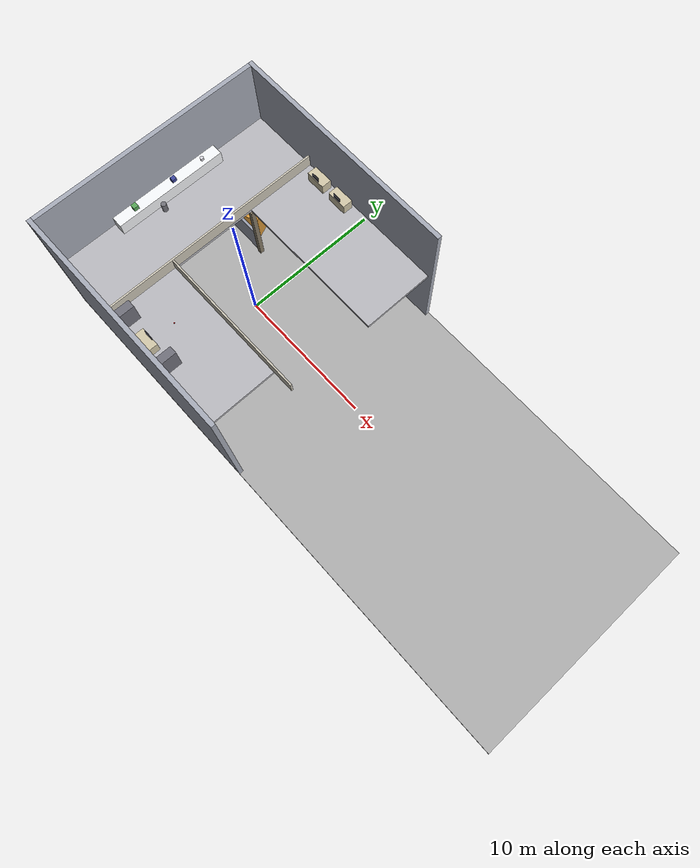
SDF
<sdf version="1.9">
 <world name="single_agent_search_room_easy">
  <model name="ground">
   <static>true</static>
   <link name="link">
    <collision name="collision"><geometry><box><size>38.6 16.6 0.2</size></box></geometry></collision>
    <visual name="visual">
     <geometry><box><size>38.6 16.6 0.2</size></box></geometry>
     <material><ambient>0.58 0.58 0.58 1</ambient><diffuse>0.68 0.68 0.68 1</diffuse></material>
    </visual>
   </link>
   <pose>11 0 -0.1 0 0 0</pose>
  </model>
  <model name="wall_A_south">
   <static>true</static>
   <link name="link">
    <collision name="collision"><geometry><box><size>16.6 0.3 10.0</size></box></geometry></collision>
    <visual name="visual">
     <geometry><box><size>16.6 0.3 10.0</size></box></geometry>
     <material><ambient>0.55 0.57 0.62 1</ambient><diffuse>0.65 0.67 0.72 1</diffuse></material>
    </visual>
   </link>
   <pose>0 -8.15 5.0 0 0 0</pose>
  </model>
  <model name="wall_A_north">
   <static>true</static>
   <link name="link">
    <collision name="collision"><geometry><box><size>16.6 0.3 10.0</size></box></geometry></collision>
    <visual name="visual">
     <geometry><box><size>16.6 0.3 10.0</size></box></geometry>
     <material><ambient>0.55 0.57 0.62 1</ambient><diffuse>0.65 0.67 0.72 1</diffuse></material>
    </visual>
   </link>
   <pose>0 8.15 5.0 0 0 0</pose>
  </model>
  <model name="wall_A_west">
   <static>true</static>
   <link name="link">
    <collision name="collision"><geometry><box><size>0.3 16.6 10.0</size></box></geometry></collision>
    <visual name="visual">
     <geometry><box><size>0.3 16.6 10.0</size></box></geometry>
     <material><ambient>0.55 0.57 0.62 1</ambient><diffuse>0.65 0.67 0.72 1</diffuse></material>
    </visual>
   </link>
   <pose>-8.15 0 5.0 0 0 0</pose>
  </model>
  <model name="divider_A_ground_south">
   <static>true</static>
   <link name="link">
    <collision name="collision"><geometry><box><size>4.8 0.18 2.2</size></box></geometry></collision>
    <visual name="visual">
     <geometry><box><size>4.8 0.18 2.2</size></box></geometry>
     <material><ambient>0.50 0.52 0.58 1</ambient><diffuse>0.60 0.62 0.68 1</diffuse></material>
    </visual>
   </link>
   <pose>-5.6 -3.05 1.1 0 0 0</pose>
  </model>
  <model name="divider_A_ground_north">
   <static>true</static>
   <link name="link">
    <collision name="collision"><geometry><box><size>4.8 0.18 2.2</size></box></geometry></collision>
    <visual name="visual">
     <geometry><box><size>4.8 0.18 2.2</size></box></geometry>
     <material><ambient>0.50 0.52 0.58 1</ambient><diffuse>0.60 0.62 0.68 1</diffuse></material>
    </visual>
   </link>
   <pose>-5.6 3.05 1.1 0 0 0</pose>
  </model>
  <model name="col_inner_sw">
   <static>true</static>
   <link name="link">
    <collision name="collision"><geometry><box><size>0.3 0.3 5.0</size></box></geometry></collision>
    <visual name="visual">
     <geometry><box><size>0.3 0.3 5.0</size></box></geometry>
     <material><ambient>0.42 0.38 0.32 1</ambient><diffuse>0.52 0.48 0.40 1</diffuse></material>
    </visual>
   </link>
   <pose>-3.0 -3.0 2.5 0 0 0</pose>
  </model>
  <model name="col_inner_nw">
   <static>true</static>
   <link name="link">
    <collision name="collision"><geometry><box><size>0.3 0.3 5.0</size></box></geometry></collision>
    <visual name="visual">
     <geometry><box><size>0.3 0.3 5.0</size></box></geometry>
     <material><ambient>0.42 0.38 0.32 1</ambient><diffuse>0.52 0.48 0.40 1</diffuse></material>
    </visual>
   </link>
   <pose>-3.0 3.0 2.5 0 0 0</pose>
  </model>
  <model name="crate_A1">
   <static>true</static>
   <link name="link">
    <collision name="collision"><geometry><box><size>1.8 1.4 2.0</size></box></geometry></collision>
    <visual name="visual">
     <geometry><box><size>1.8 1.4 2.0</size></box></geometry>
     <material><ambient>0.80 0.55 0.18 1</ambient><diffuse>0.88 0.62 0.24 1</diffuse></material>
    </visual>
   </link>
   <pose>-5.0 4.0 1.0 0 0 0.4</pose>
  </model>
  <model name="crate_A2">
   <static>true</static>
   <link name="link">
    <collision name="collision"><geometry><box><size>2.2 0.8 1.4</size></box></geometry></collision>
    <visual name="visual">
     <geometry><box><size>2.2 0.8 1.4</size></box></geometry>
     <material><ambient>0.22 0.52 0.78 1</ambient><diffuse>0.28 0.60 0.86 1</diffuse></material>
    </visual>
   </link>
   <pose>-5.0 -5.0 0.7 0 0 0</pose>
  </model>
  <model name="mezz_slab_west">
   <static>true</static>
   <link name="link">
    <collision name="collision"><geometry><box><size>5.0 16.0 0.2</size></box></geometry></collision>
    <visual name="visual">
     <geometry><box><size>5.0 16.0 0.2</size></box></geometry>
     <material><ambient>0.62 0.62 0.64 1</ambient><diffuse>0.72 0.72 0.74 1</diffuse></material>
    </visual>
   </link>
   <pose>-5.5 0 5.1 0 0 0</pose>
  </model>
  <model name="mezz_slab_south_west">
   <static>true</static>
   <link name="link">
    <collision name="collision"><geometry><box><size>9.4 5.0 0.2</size></box></geometry></collision>
    <visual name="visual">
     <geometry><box><size>9.4 5.0 0.2</size></box></geometry>
     <material><ambient>0.62 0.62 0.64 1</ambient><diffuse>0.72 0.72 0.74 1</diffuse></material>
    </visual>
   </link>
   <pose>1.7 -5.5 5.1 0 0 0</pose>
  </model>
  <model name="mezz_slab_north">
   <static>true</static>
   <link name="link">
    <collision name="collision"><geometry><box><size>11.0 5.0 0.2</size></box></geometry></collision>
    <visual name="visual">
     <geometry><box><size>11.0 5.0 0.2</size></box></geometry>
     <material><ambient>0.62 0.62 0.64 1</ambient><diffuse>0.72 0.72 0.74 1</diffuse></material>
    </visual>
   </link>
   <pose>2.5 5.5 5.1 0 0 0</pose>
  </model>
  <model name="railing_atrium_w">
   <static>true</static>
   <link name="link">
    <collision name="collision"><geometry><box><size>0.12 16.0 0.9</size></box></geometry></collision>
    <visual name="visual">
     <geometry><box><size>0.12 16.0 0.9</size></box></geometry>
     <material><ambient>0.70 0.68 0.64 1</ambient><diffuse>0.80 0.78 0.72 1</diffuse></material>
    </visual>
   </link>
   <pose>-3.06 0 5.65 0 0 0</pose>
  </model>
  <model name="railing_atrium_s">
   <static>true</static>
   <link name="link">
    <collision name="collision"><geometry><box><size>11.0 0.12 0.9</size></box></geometry></collision>
    <visual name="visual">
     <geometry><box><size>11.0 0.12 0.9</size></box></geometry>
     <material><ambient>0.70 0.68 0.64 1</ambient><diffuse>0.80 0.78 0.72 1</diffuse></material>
    </visual>
   </link>
   <pose>2.5 -3.06 5.65 0 0 0</pose>
  </model>
  <model name="bench_lab_west">
   <static>true</static>
   <link name="link">
    <collision name="collision"><geometry><box><size>0.8 8.0 0.9</size></box></geometry></collision>
    <visual name="visual">
     <geometry><box><size>0.8 8.0 0.9</size></box></geometry>
     <material><ambient>0.90 0.92 0.94 1</ambient><diffuse>0.96 0.97 0.98 1</diffuse></material>
    </visual>
   </link>
   <pose>-7.45 0 5.65 0 0 0</pose>
  </model>
  <model name="equip_west_1">
   <static>true</static>
   <link name="link">
    <collision name="collision"><geometry><box><size>0.35 0.35 0.45</size></box></geometry></collision>
    <visual name="visual">
     <geometry><box><size>0.35 0.35 0.45</size></box></geometry>
     <material><ambient>0.28 0.55 0.28 1</ambient><diffuse>0.35 0.65 0.35 1</diffuse></material>
    </visual>
   </link>
   <pose>-7.45 -2.5 6.18 0 0 0</pose>
  </model>
  <model name="equip_west_2">
   <static>true</static>
   <link name="link">
    <collision name="collision"><geometry><box><size>0.30 0.30 0.40</size></box></geometry></collision>
    <visual name="visual">
     <geometry><box><size>0.30 0.30 0.40</size></box></geometry>
     <material><ambient>0.18 0.22 0.52 1</ambient><diffuse>0.24 0.28 0.62 1</diffuse></material>
    </visual>
   </link>
   <pose>-7.45 0.5 6.15 0 0 0</pose>
  </model>
  <model name="equip_west_3">
   <static>true</static>
   <link name="link">
    <collision name="collision">
     <geometry><cylinder><radius>0.12</radius><length>0.40</length></cylinder></geometry>
    </collision>
    <visual name="visual">
     <geometry><cylinder><radius>0.12</radius><length>0.40</length></cylinder></geometry>
     <material><ambient>0.75 0.75 0.78 1</ambient><diffuse>0.85 0.85 0.88 1</diffuse></material>
    </visual>
   </link>
   <pose>-7.45 2.8 6.10 0 0 0</pose>
  </model>
  <model name="stool_west">
   <static>true</static>
   <link name="link">
    <collision name="collision">
     <geometry><cylinder><radius>0.18</radius><length>0.65</length></cylinder></geometry>
    </collision>
    <visual name="visual">
     <geometry><cylinder><radius>0.18</radius><length>0.65</length></cylinder></geometry>
     <material><ambient>0.35 0.35 0.38 1</ambient><diffuse>0.45 0.45 0.48 1</diffuse></material>
    </visual>
   </link>
   <pose>-6.7 -1.0 5.53 0 0 0</pose>
  </model>
  <model name="desk_north_1">
   <static>true</static>
   <link name="link">
    <collision name="collision"><geometry><box><size>1.4 0.7 0.75</size></box></geometry></collision>
    <visual name="visual">
     <geometry><box><size>1.4 0.7 0.75</size></box></geometry>
     <material><ambient>0.72 0.68 0.58 1</ambient><diffuse>0.82 0.78 0.66 1</diffuse></material>
    </visual>
   </link>
   <pose>-1.5 7.5 5.575 0 0 0</pose>
  </model>
  <model name="desk_north_2">
   <static>true</static>
   <link name="link">
    <collision name="collision"><geometry><box><size>1.4 0.7 0.75</size></box></geometry></collision>
    <visual name="visual">
     <geometry><box><size>1.4 0.7 0.75</size></box></geometry>
     <material><ambient>0.72 0.68 0.58 1</ambient><diffuse>0.82 0.78 0.66 1</diffuse></material>
    </visual>
   </link>
   <pose>0.5 7.5 5.575 0 0 0</pose>
  </model>
  <model name="monitor_n1">
   <static>true</static>
   <link name="link">
    <collision name="collision"><geometry><box><size>0.55 0.06 0.38</size></box></geometry></collision>
    <visual name="visual">
     <geometry><box><size>0.55 0.06 0.38</size></box></geometry>
     <material><ambient>0.10 0.10 0.12 1</ambient><diffuse>0.16 0.16 0.20 1</diffuse></material>
    </visual>
   </link>
   <pose>-1.5 7.2 6.14 0 0 0</pose>
  </model>
  <model name="monitor_n2">
   <static>true</static>
   <link name="link">
    <collision name="collision"><geometry><box><size>0.55 0.06 0.38</size></box></geometry></collision>
    <visual name="visual">
     <geometry><box><size>0.55 0.06 0.38</size></box></geometry>
     <material><ambient>0.10 0.10 0.12 1</ambient><diffuse>0.16 0.16 0.20 1</diffuse></material>
    </visual>
   </link>
   <pose>0.5 7.2 6.14 0 0 0</pose>
  </model>
  <model name="desk_south">
   <static>true</static>
   <link name="link">
    <collision name="collision"><geometry><box><size>1.4 0.7 0.75</size></box></geometry></collision>
    <visual name="visual">
     <geometry><box><size>1.4 0.7 0.75</size></box></geometry>
     <material><ambient>0.72 0.68 0.58 1</ambient><diffuse>0.82 0.78 0.66 1</diffuse></material>
    </visual>
   </link>
   <pose>0 -7.5 5.575 0 0 0</pose>
  </model>
  <model name="monitor_south">
   <static>true</static>
   <link name="link">
    <collision name="collision"><geometry><box><size>0.55 0.06 0.38</size></box></geometry></collision>
    <visual name="visual">
     <geometry><box><size>0.55 0.06 0.38</size></box></geometry>
     <material><ambient>0.10 0.10 0.12 1</ambient><diffuse>0.16 0.16 0.20 1</diffuse></material>
    </visual>
   </link>
   <pose>0 -7.2 6.14 0 0 0</pose>
  </model>
  <model name="cabinet_south_w">
   <static>true</static>
   <link name="link">
    <collision name="collision"><geometry><box><size>0.55 1.5 1.6</size></box></geometry></collision>
    <visual name="visual">
     <geometry><box><size>0.55 1.5 1.6</size></box></geometry>
     <material><ambient>0.35 0.35 0.38 1</ambient><diffuse>0.44 0.44 0.48 1</diffuse></material>
    </visual>
   </link>
   <pose>-2.0 -7.5 6.0 0 0 0</pose>
  </model>
  <model name="cabinet_south_e">
   <static>true</static>
   <link name="link">
    <collision name="collision"><geometry><box><size>0.55 1.5 1.6</size></box></geometry></collision>
    <visual name="visual">
     <geometry><box><size>0.55 1.5 1.6</size></box></geometry>
     <material><ambient>0.35 0.35 0.38 1</ambient><diffuse>0.44 0.44 0.48 1</diffuse></material>
    </visual>
   </link>
   <pose>2.0 -7.5 6.0 0 0 0</pose>
  </model>
  <include><uri>model://red_can</uri><name>red_can_balcony</name><pose>0.0 -5.5 5.30 0 0 0</pose></include>
 </world>
</sdf>
